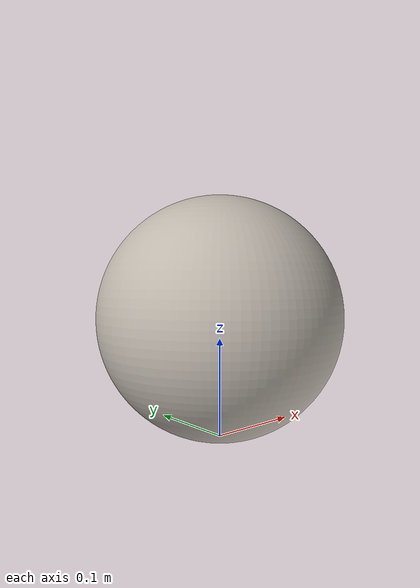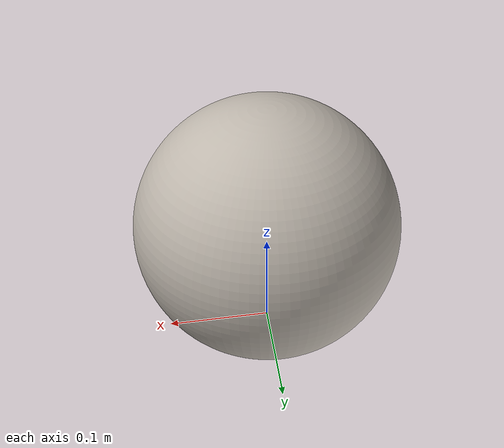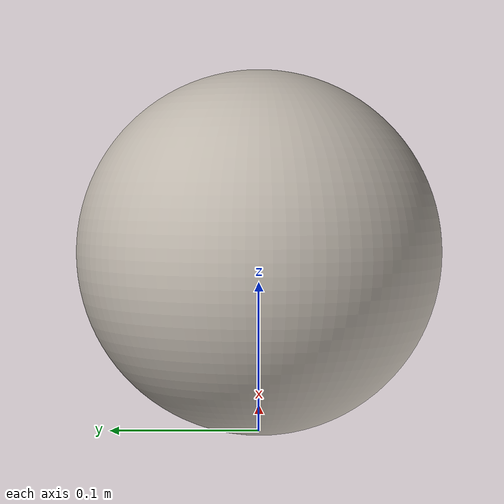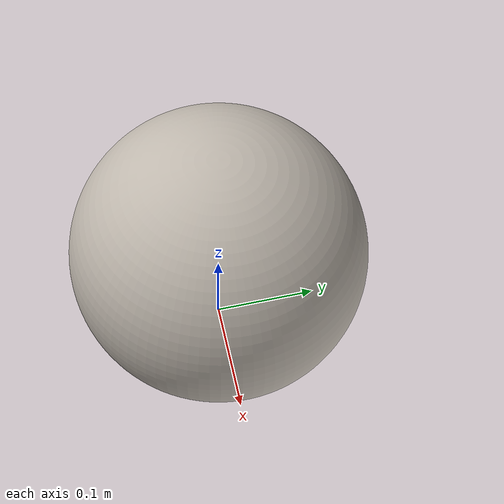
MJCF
<mujoco model="microduck_basketball">
    <compiler angle="radian" meshdir="assets" texturedir="assets" autolimits="true"/>

    <asset>
        <!-- Equirectangular 8-panel seam texture (from Vottivott/microduck-playground,
             scripts/make_basketball_assets.py). Visual only. -->
        <texture type="2d" name="basketball_tex" file="basketball.png"/>
        <material name="basketball_mat" texture="basketball_tex" specular="0.15" shininess="0.15" reflectance="0"/>
        <mesh name="basketball_mesh" file="basketball.obj"/>
    </asset>

    <worldbody>
        <body name="ball" pos="0 0 0.12">
            <freejoint name="ball_free"/>
            <inertial pos="0 0 0" mass="0.62" diaginertia="0.00595 0.00595 0.00595"/>
            <!-- Collision sphere (invisible; the mesh below carries the look). -->
            <geom type="sphere" name="ball_geom" size="0.12" rgba="1 1 1 0" group="3"
                  condim="6" friction="1.0 0.01 0.001"/>
            <geom type="mesh" name="ball_visual" mesh="basketball_mesh" material="basketball_mat"
                  contype="0" conaffinity="0" mass="0" group="0"/>
        </body>
    </worldbody>
</mujoco>
